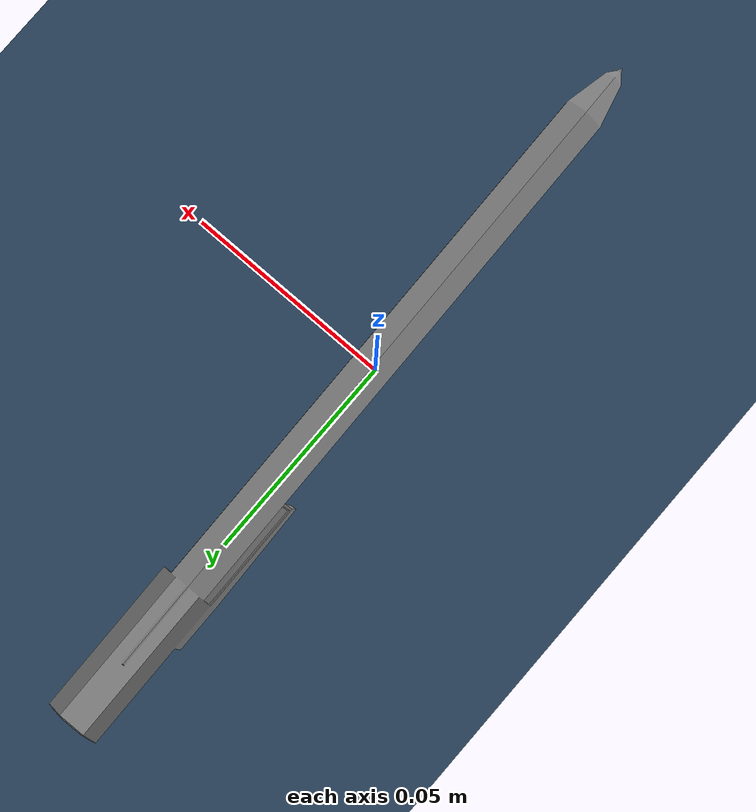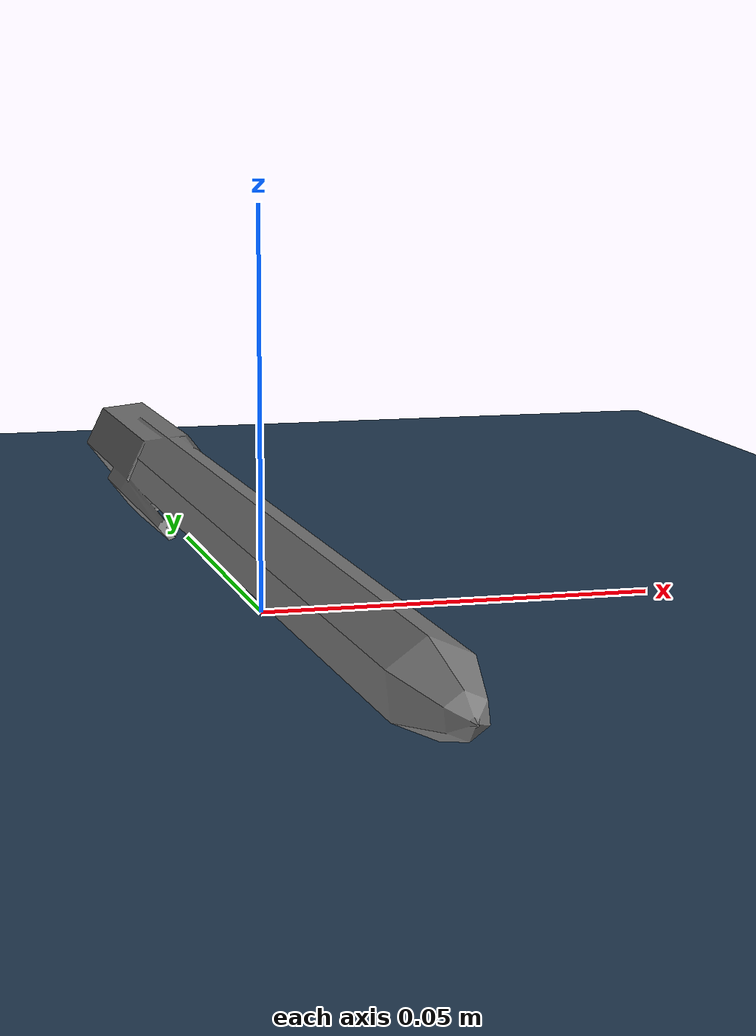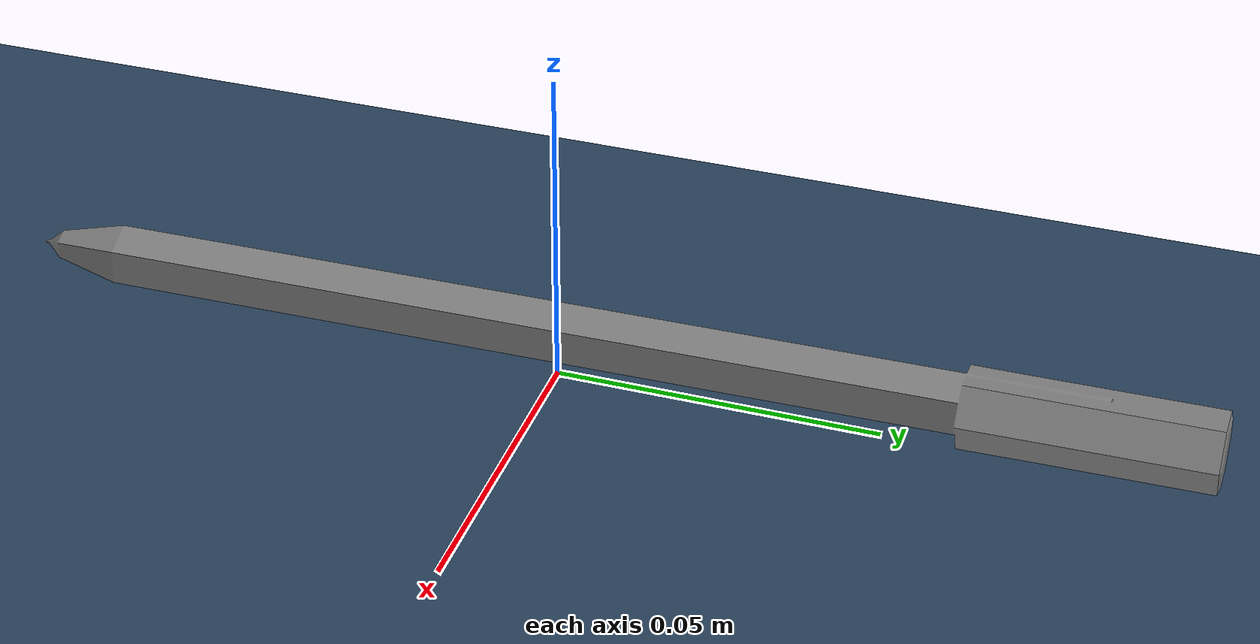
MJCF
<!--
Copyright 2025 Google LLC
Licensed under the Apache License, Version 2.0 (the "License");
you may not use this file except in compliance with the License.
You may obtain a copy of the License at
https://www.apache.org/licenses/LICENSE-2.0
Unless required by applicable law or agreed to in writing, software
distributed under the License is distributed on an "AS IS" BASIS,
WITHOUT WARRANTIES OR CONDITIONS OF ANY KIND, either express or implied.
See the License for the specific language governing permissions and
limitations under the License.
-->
<mujoco model="black_pen scene">
  <include file="model.xml"/>

  <option>
    <flag multiccd="enable"/>
  </option>

  <statistic center="0 0 0.1" extent="0.4" meansize="0.02"/>

  <visual>
    <headlight diffuse="0.6 0.6 0.6" ambient="0.3 0.3 0.3" specular="0 0 0"/>
    <rgba haze="0.15 0.25 0.35 1"/>
    <global azimuth="120" elevation="-10"/>
  </visual>

  <asset>
    <texture type="skybox" builtin="gradient" rgb1="0.3 0.5 0.7" rgb2="0 0 0" width="512" height="3072"/>
    <texture type="2d" name="groundplane" builtin="checker" mark="edge" rgb1="0.2 0.3 0.4" rgb2="0.1 0.2 0.3"
      markrgb="0.8 0.8 0.8" width="300" height="300"/>
    <material name="groundplane" texture="groundplane" texuniform="true" texrepeat="5 5" reflectance="0.2"/>
  </asset>

  <worldbody>
    <light pos="0 0 1.5" directional="true"/>
    <geom name="floor" size="0 0 0.05" type="plane" material="groundplane"/>
  </worldbody>
</mujoco>

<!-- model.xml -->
<mujoco model="writing_pens">
  <compiler assetdir="meshes" texturedir="materials"/>

  <asset>
    <mesh file="textured.obj" scale = "1.5 1 1.5"/>
    <mesh file="coacd_part_000.obj" scale = "1.5 1 1.5"/>

  </asset>

  <default>
    <default class="writing_pens">
      <default class="visual_writing_pens">
        <geom type="mesh" group="2" density="200" contype="0" conaffinity="0"/>
      </default>
      <default class="collision_writing_pens">
        <geom type="mesh" group="3" mass="0" density="0" solref=".004 1" friction="1.0 0.01 0.01" condim="6"/>
      </default>
    </default>
  </default>

  <worldbody>
    <body childclass="writing_pens">
      <freejoint/>
      <geom class="visual_writing_pens" mesh="textured"/>
      <geom class="collision_writing_pens" mesh="coacd_part_000"/>
    </body>
  </worldbody>
</mujoco>
